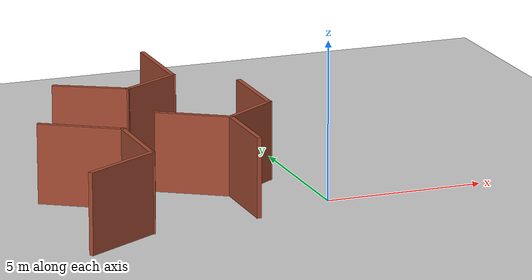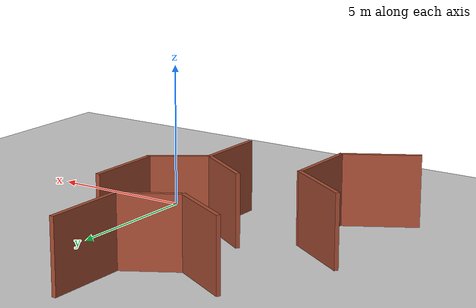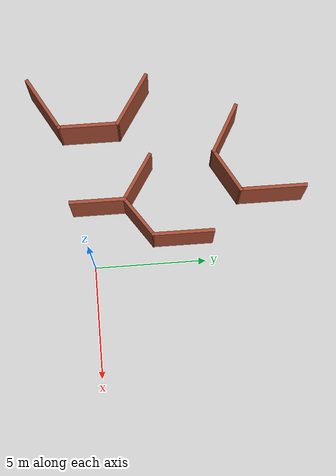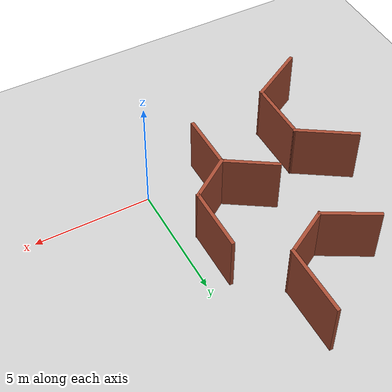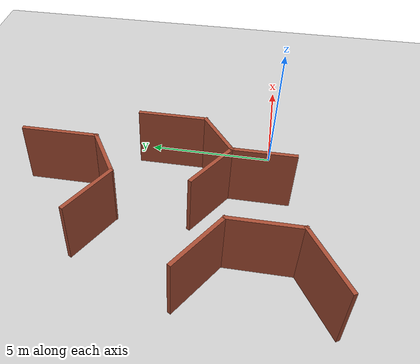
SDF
<sdf version="1.6">
 <world name="default">
  <model name="maze_rect_3">
   <pose>4e-06 -9.9e-05 0 0 -0 1.57001</pose>
   <link name="Wall_397">
    <collision name="Wall_397_Collision">
     <geometry><box><size>2.42901 0.15 2.5</size></box></geometry>
     <pose>0 0 1.25 0 -0 0</pose>
    </collision>
    <visual name="Wall_397_Visual">
     <pose>0 0 1.25 0 -0 0</pose>
     <geometry><box><size>2.42901 0.15 2.5</size></box></geometry>
     <material>
      <script><uri>file://media/materials/scripts/gazebo.material</uri><name>Gazebo/Bricks</name></script>
      <ambient>1 1 1 1</ambient>
     </material>
     <meta><layer>0</layer></meta>
    </visual>
    <pose>2.16247 3.50043 0 0 -0 -2.14324</pose>
   </link>
   <link name="Wall_413">
    <collision name="Wall_413_Collision">
     <geometry><box><size>2.75 0.15 2.5</size></box></geometry>
     <pose>0 0 1.25 0 -0 0</pose>
    </collision>
    <visual name="Wall_413_Visual">
     <pose>0 0 1.25 0 -0 0</pose>
     <geometry><box><size>2.75 0.15 2.5</size></box></geometry>
     <material>
      <script><uri>file://media/materials/scripts/gazebo.material</uri><name>Gazebo/Bricks</name></script>
      <ambient>1 1 1 1</ambient>
     </material>
     <meta><layer>0</layer></meta>
    </visual>
    <pose>-1.79476 7.12736 0 0 -0 -1.0472</pose>
   </link>
   <link name="Wall_414">
    <collision name="Wall_414_Collision">
     <geometry><box><size>2.75 0.15 2.5</size></box></geometry>
     <pose>0 0 1.25 0 -0 0</pose>
    </collision>
    <visual name="Wall_414_Visual">
     <pose>0 0 1.25 0 -0 0</pose>
     <geometry><box><size>2.75 0.15 2.5</size></box></geometry>
     <material>
      <script><uri>file://media/materials/scripts/gazebo.material</uri><name>Gazebo/Bricks</name></script>
      <ambient>1 1 1 1</ambient>
     </material>
     <meta><layer>0</layer></meta>
    </visual>
    <pose>0.155242 6.00152 0 0 -0 0</pose>
   </link>
   <link name="Wall_415">
    <collision name="Wall_415_Collision">
     <geometry><box><size>2.72023 0.15 2.5</size></box></geometry>
     <pose>0 0 1.25 0 -0 0</pose>
    </collision>
    <visual name="Wall_415_Visual">
     <pose>0 0 1.25 0 -0 0</pose>
     <geometry><box><size>2.72023 0.15 2.5</size></box></geometry>
     <material>
      <script><uri>file://media/materials/scripts/gazebo.material</uri><name>Gazebo/Bricks</name></script>
      <ambient>1 1 1 1</ambient>
     </material>
     <meta><layer>0</layer></meta>
    </visual>
    <pose>2.15341 7.08045 0 0 -0 0.996468</pose>
   </link>
   <link name="Wall_82">
    <collision name="Wall_82_Collision">
     <geometry><box><size>2.5 0.15 2.5</size></box></geometry>
     <pose>0 0 1.25 0 -0 0</pose>
    </collision>
    <visual name="Wall_82_Visual">
     <pose>0 0 1.25 0 -0 0</pose>
     <geometry><box><size>2.5 0.15 2.5</size></box></geometry>
     <material>
      <script><uri>file://media/materials/scripts/gazebo.material</uri><name>Gazebo/Bricks</name></script>
      <ambient>1 1 1 1</ambient>
     </material>
     <meta><layer>0</layer></meta>
    </visual>
    <pose>0.370217 2.54258 0 0 -0 0</pose>
   </link>
   <link name="Wall_83">
    <collision name="Wall_83_Collision">
     <geometry><box><size>2.17751 0.15 2.5</size></box></geometry>
     <pose>0 0 1.25 0 -0 0</pose>
    </collision>
    <visual name="Wall_83_Visual">
     <pose>0 0 1.25 0 -0 0</pose>
     <geometry><box><size>2.17751 0.15 2.5</size></box></geometry>
     <material>
      <script><uri>file://media/materials/scripts/gazebo.material</uri><name>Gazebo/Bricks</name></script>
      <ambient>1 1 1 1</ambient>
     </material>
     <meta><layer>0</layer></meta>
    </visual>
    <pose>2.12607 1.71173 0 0 -0 -0.960672</pose>
   </link>
   <link name="Wall_84">
    <collision name="Wall_84_Collision">
     <geometry><box><size>2.75 0.15 2.5</size></box></geometry>
     <pose>0 0 1.25 0 -0 0</pose>
    </collision>
    <visual name="Wall_84_Visual">
     <pose>0 0 1.25 0 -0 0</pose>
     <geometry><box><size>2.75 0.15 2.5</size></box></geometry>
     <material>
      <script><uri>file://media/materials/scripts/gazebo.material</uri><name>Gazebo/Bricks</name></script>
      <ambient>1 1 1 1</ambient>
     </material>
     <meta><layer>0</layer></meta>
    </visual>
    <pose>4.00692 0.880877 0 0 -0 0</pose>
   </link>
   <link name="Wall_93">
    <collision name="Wall_93_Collision">
     <geometry><box><size>3 0.15 2.5</size></box></geometry>
     <pose>0 0 1.25 0 -0 0</pose>
    </collision>
    <visual name="Wall_93_Visual">
     <pose>0 0 1.25 0 -0 0</pose>
     <geometry><box><size>3 0.15 2.5</size></box></geometry>
     <material>
      <script><uri>file://media/materials/scripts/gazebo.material</uri><name>Gazebo/Bricks</name></script>
      <ambient>1 1 1 1</ambient>
     </material>
     <meta><layer>0</layer></meta>
    </visual>
    <pose>8.09282 2.61528 0 0 -0 3.14159</pose>
   </link>
   <link name="Wall_94">
    <collision name="Wall_94_Collision">
     <geometry><box><size>2.25 0.15 2.5</size></box></geometry>
     <pose>0 0 1.25 0 -0 0</pose>
    </collision>
    <visual name="Wall_94_Visual">
     <pose>0 0 1.25 0 -0 0</pose>
     <geometry><box><size>2.25 0.15 2.5</size></box></geometry>
     <material>
      <script><uri>file://media/materials/scripts/gazebo.material</uri><name>Gazebo/Bricks</name></script>
      <ambient>1 1 1 1</ambient>
     </material>
     <meta><layer>0</layer></meta>
    </visual>
    <pose>6.14282 3.52461 0 0 -0 2.0944</pose>
   </link>
   <link name="Wall_95">
    <collision name="Wall_95_Collision">
     <geometry><box><size>2.45115 0.15 2.5</size></box></geometry>
     <pose>0 0 1.25 0 -0 0</pose>
    </collision>
    <visual name="Wall_95_Visual">
     <pose>0 0 1.25 0 -0 0</pose>
     <geometry><box><size>2.45115 0.15 2.5</size></box></geometry>
     <material>
      <script><uri>file://media/materials/scripts/gazebo.material</uri><name>Gazebo/Bricks</name></script>
      <ambient>1 1 1 1</ambient>
     </material>
     <meta><layer>0</layer></meta>
    </visual>
    <pose>6.19217 5.45152 0 0 -0 1.06128</pose>
   </link>
   <static>1</static>
  </model>
  <model name="ground_plane">
   <static>1</static>
   <link name="link">
    <collision name="collision">
     <geometry><plane><normal>0 0 1</normal><size>100 100</size></plane></geometry>
     <surface>
      <contact><collide_bitmask>65535</collide_bitmask></contact>
      <friction><ode><mu>100</mu><mu2>50</mu2></ode></friction>
     </surface>
    </collision>
    <visual name="visual">
     <cast_shadows>0</cast_shadows>
     <geometry><plane><normal>0 0 1</normal><size>100 100</size></plane></geometry>
     <material>
      <script><uri>file://media/materials/scripts/gazebo.material</uri><name>Gazebo/Grey</name></script>
     </material>
    </visual>
   </link>
   <pose>9.31394 52.073 0 0 -0 0</pose>
  </model>
 </world>
</sdf>
